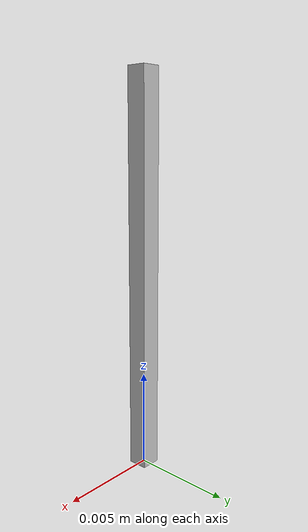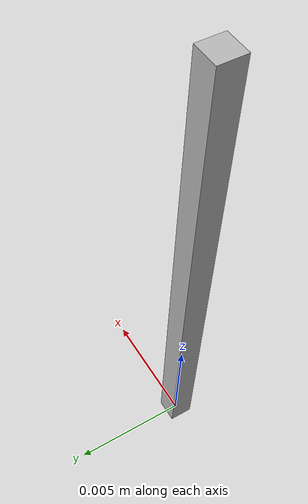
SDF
<?xml version='1.0'?>
<sdf version='1.4'>
  <model name="1mm_bar">
    <link name='link'>
      <pose>0 0 0.01 0 0 0</pose>
      <inertial>
        <mass>0.01</mass>
        <inertia>
          <ixx>0.001</ixx>
          <ixy>0</ixy>
          <ixz>0</ixz>
          <iyy>0.001</iyy>
          <iyz>0</iyz>
          <izz>0.001</izz>
        </inertia>
      </inertial>
     <collision name='collision'>
        <geometry>
          <box>
            <size>0.001 0.001 0.02</size>
          </box>
        </geometry>
       <surface>
            <friction>
              <ode>
                <mu>50.0</mu>
                <mu2>50.0</mu2>
              </ode>
            </friction>
            <contact>
              <ode>
                <kp>1000000.0</kp>
                <kd>100.0</kd>
                <max_vel>1.0</max_vel>
                <min_depth>0.0005</min_depth>
              </ode>
            </contact>
          </surface>
      </collision>

      <visual name='visual'>
        <geometry>
          <box>
            <size>0.001 0.001 0.02</size>
          </box>
        </geometry>
      </visual>
    </link>
  </model>
</sdf>
